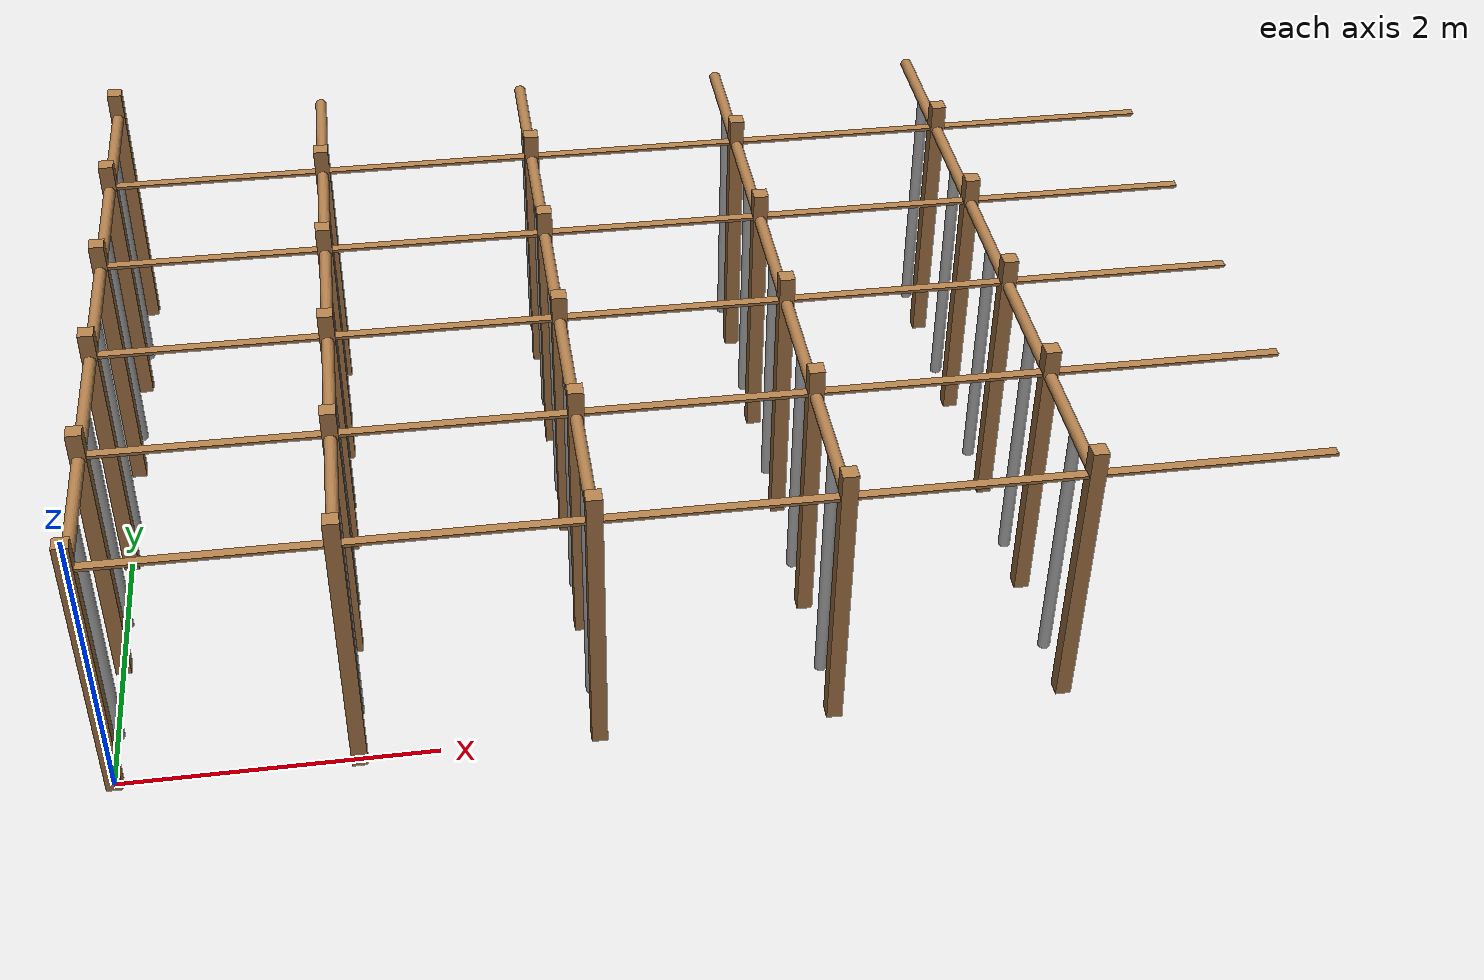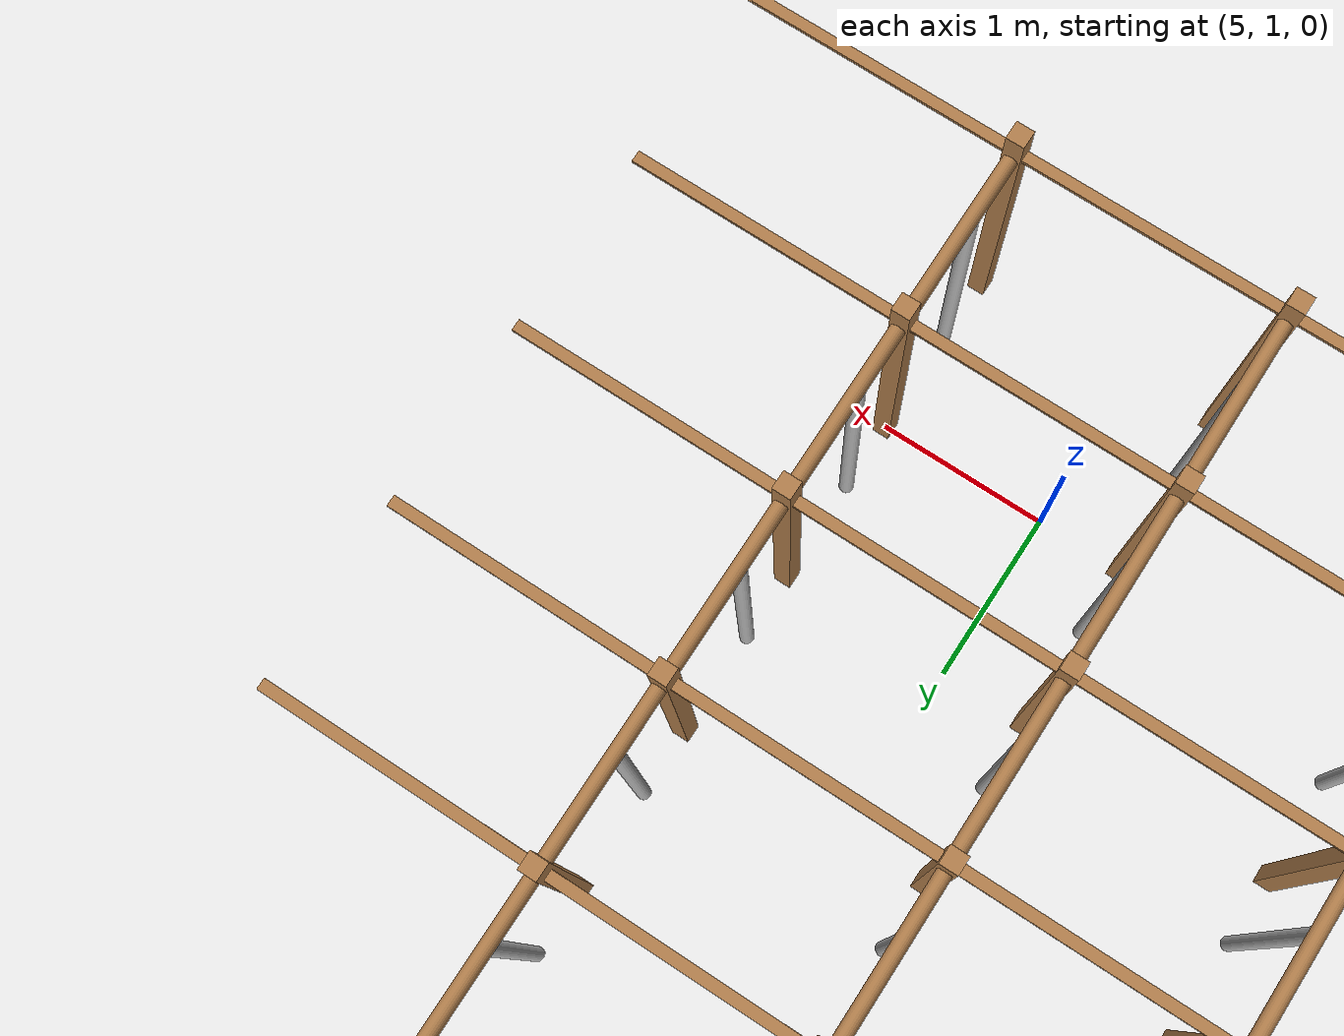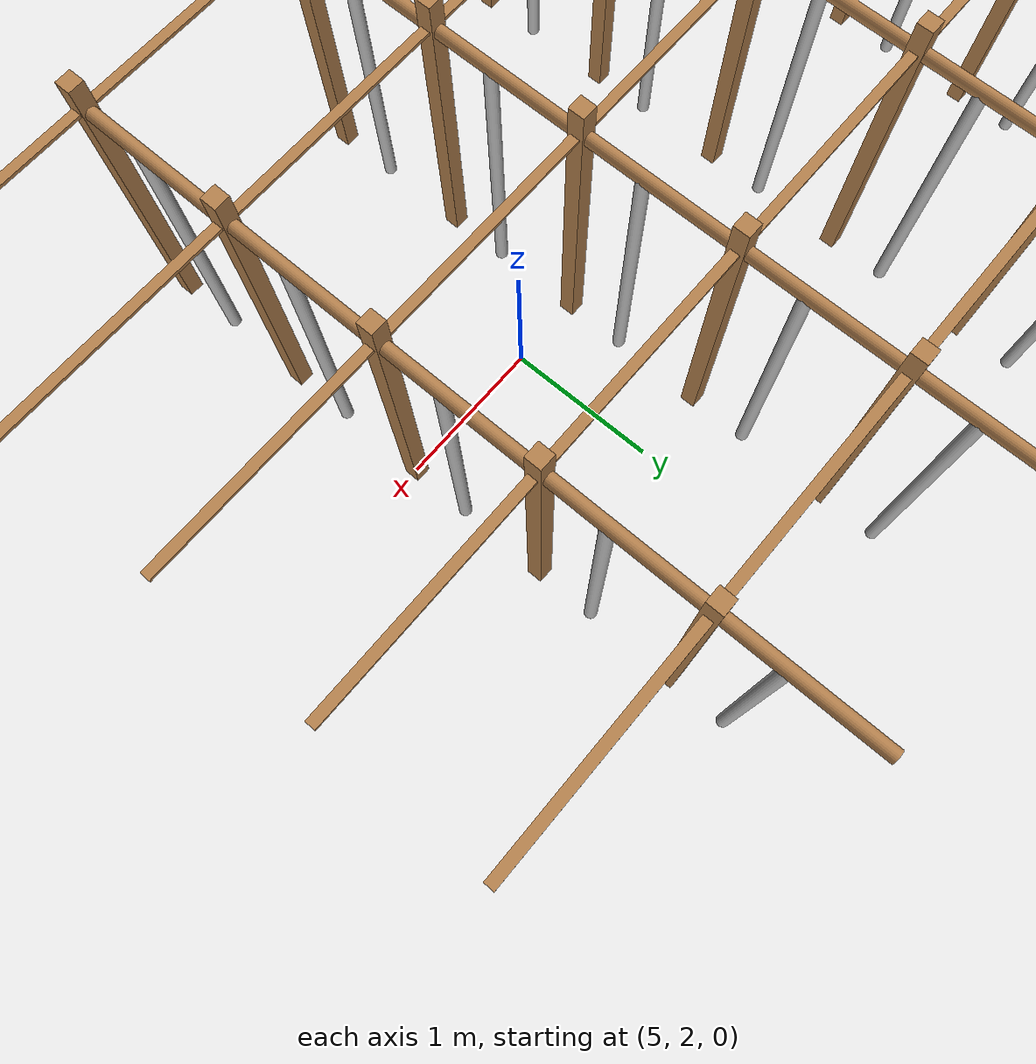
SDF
<sdf version="1.4">
 <model name="pergola">
  <include><name>post_0</name><uri>model://post</uri></include>
  <include><name>post_1</name><pose>0.0 1.0 0 0 0 0</pose><uri>model://post</uri></include>
  <include><name>post_2</name><pose>0.0 2.0 0 0 0 0</pose><uri>model://post</uri></include>
  <include><name>post_3</name><pose>0.0 3.0 0 0 0 0</pose><uri>model://post</uri></include>
  <include><name>post_4</name><pose>0.0 4.0 0 0 0 0</pose><uri>model://post</uri></include>
  <include><name>post_5</name><pose>0.0 5.0 0 0 0 0</pose><uri>model://post</uri></include>
  <include><name>post_11</name><pose>1.5 0.0 0 0 0 0</pose><uri>model://post</uri></include>
  <include><name>post_12</name><pose>1.5 1.0 0 0 0 0</pose><uri>model://post</uri></include>
  <include><name>post_13</name><pose>1.5 2.0 0 0 0 0</pose><uri>model://post</uri></include>
  <include><name>post_14</name><pose>1.5 3.0 0 0 0 0</pose><uri>model://post</uri></include>
  <include><name>post_15</name><pose>1.5 4.0 0 0 0 0</pose><uri>model://post</uri></include>
  <include><name>post_22</name><pose>3.0 0.0 0 0 0 0</pose><uri>model://post</uri></include>
  <include><name>post_23</name><pose>3.0 1.0 0 0 0 0</pose><uri>model://post</uri></include>
  <include><name>post_24</name><pose>3.0 2.0 0 0 0 0</pose><uri>model://post</uri></include>
  <include><name>post_25</name><pose>3.0 3.0 0 0 0 0</pose><uri>model://post</uri></include>
  <include><name>post_26</name><pose>3.0 4.0 0 0 0 0</pose><uri>model://post</uri></include>
  <include><name>post_33</name><pose>4.5 0.0 0 0 0 0</pose><uri>model://post</uri></include>
  <include><name>post_34</name><pose>4.5 1.0 0 0 0 0</pose><uri>model://post</uri></include>
  <include><name>post_35</name><pose>4.5 2.0 0 0 0 0</pose><uri>model://post</uri></include>
  <include><name>post_36</name><pose>4.5 3.0 0 0 0 0</pose><uri>model://post</uri></include>
  <include><name>post_37</name><pose>4.5 4.0 0 0 0 0</pose><uri>model://post</uri></include>
  <include><name>post_44</name><pose>6.0 0.0 0 0 0 0</pose><uri>model://post</uri></include>
  <include><name>post_45</name><pose>6.0 1.0 0 0 0 0</pose><uri>model://post</uri></include>
  <include><name>post_46</name><pose>6.0 2.0 0 0 0 0</pose><uri>model://post</uri></include>
  <include><name>post_47</name><pose>6.0 3.0 0 0 0 0</pose><uri>model://post</uri></include>
  <include><name>post_48</name><pose>6.0 4.0 0 0 0 0</pose><uri>model://post</uri></include>
  <link name="beam_0">
   <pose>0.75 0.0 1.81 0 0 0</pose>
   <collision name="collision"><geometry><box><size>1.5 0.06 0.02</size></box></geometry></collision>
   <visual name="visual">
    <geometry><box><size>1.5 0.06 0.02</size></box></geometry>
    <material><script><name>Gazebo/Wood</name></script></material>
   </visual>
   <inertial>
    <mass>5</mass>
    <inertia>
     <ixx>0.0016666666666666668</ixx>
     <ixy>0.0</ixy>
     <ixz>0.0</ixz>
     <iyy>0.9390000000000001</iyy>
     <iyz>0.0</iyz>
     <izz>0.9376666666666665</izz>
    </inertia>
   </inertial>
  </link>
  <link name="beam_1">
   <pose>0.75 1.0 1.81 0 0 0</pose>
   <collision name="collision"><geometry><box><size>1.5 0.06 0.02</size></box></geometry></collision>
   <visual name="visual">
    <geometry><box><size>1.5 0.06 0.02</size></box></geometry>
    <material><script><name>Gazebo/Wood</name></script></material>
   </visual>
   <inertial>
    <mass>5</mass>
    <inertia>
     <ixx>0.0016666666666666668</ixx>
     <ixy>0.0</ixy>
     <ixz>0.0</ixz>
     <iyy>0.9390000000000001</iyy>
     <iyz>0.0</iyz>
     <izz>0.9376666666666665</izz>
    </inertia>
   </inertial>
  </link>
  <link name="beam_2">
   <pose>0.75 2.0 1.81 0 0 0</pose>
   <collision name="collision"><geometry><box><size>1.5 0.06 0.02</size></box></geometry></collision>
   <visual name="visual">
    <geometry><box><size>1.5 0.06 0.02</size></box></geometry>
    <material><script><name>Gazebo/Wood</name></script></material>
   </visual>
   <inertial>
    <mass>5</mass>
    <inertia>
     <ixx>0.0016666666666666668</ixx>
     <ixy>0.0</ixy>
     <ixz>0.0</ixz>
     <iyy>0.9390000000000001</iyy>
     <iyz>0.0</iyz>
     <izz>0.9376666666666665</izz>
    </inertia>
   </inertial>
  </link>
  <link name="beam_3">
   <pose>0.75 3.0 1.81 0 0 0</pose>
   <collision name="collision"><geometry><box><size>1.5 0.06 0.02</size></box></geometry></collision>
   <visual name="visual">
    <geometry><box><size>1.5 0.06 0.02</size></box></geometry>
    <material><script><name>Gazebo/Wood</name></script></material>
   </visual>
   <inertial>
    <mass>5</mass>
    <inertia>
     <ixx>0.0016666666666666668</ixx>
     <ixy>0.0</ixy>
     <ixz>0.0</ixz>
     <iyy>0.9390000000000001</iyy>
     <iyz>0.0</iyz>
     <izz>0.9376666666666665</izz>
    </inertia>
   </inertial>
  </link>
  <link name="beam_4">
   <pose>0.75 4.0 1.81 0 0 0</pose>
   <collision name="collision"><geometry><box><size>1.5 0.06 0.02</size></box></geometry></collision>
   <visual name="visual">
    <geometry><box><size>1.5 0.06 0.02</size></box></geometry>
    <material><script><name>Gazebo/Wood</name></script></material>
   </visual>
   <inertial>
    <mass>5</mass>
    <inertia>
     <ixx>0.0016666666666666668</ixx>
     <ixy>0.0</ixy>
     <ixz>0.0</ixz>
     <iyy>0.9390000000000001</iyy>
     <iyz>0.0</iyz>
     <izz>0.9376666666666665</izz>
    </inertia>
   </inertial>
  </link>
  <link name="beam_11">
   <pose>2.25 0.0 1.81 0 0 0</pose>
   <collision name="collision"><geometry><box><size>1.5 0.06 0.02</size></box></geometry></collision>
   <visual name="visual">
    <geometry><box><size>1.5 0.06 0.02</size></box></geometry>
    <material><script><name>Gazebo/Wood</name></script></material>
   </visual>
   <inertial>
    <mass>5</mass>
    <inertia>
     <ixx>0.0016666666666666668</ixx>
     <ixy>0.0</ixy>
     <ixz>0.0</ixz>
     <iyy>0.9390000000000001</iyy>
     <iyz>0.0</iyz>
     <izz>0.9376666666666665</izz>
    </inertia>
   </inertial>
  </link>
  <link name="beam_12">
   <pose>2.25 1.0 1.81 0 0 0</pose>
   <collision name="collision"><geometry><box><size>1.5 0.06 0.02</size></box></geometry></collision>
   <visual name="visual">
    <geometry><box><size>1.5 0.06 0.02</size></box></geometry>
    <material><script><name>Gazebo/Wood</name></script></material>
   </visual>
   <inertial>
    <mass>5</mass>
    <inertia>
     <ixx>0.0016666666666666668</ixx>
     <ixy>0.0</ixy>
     <ixz>0.0</ixz>
     <iyy>0.9390000000000001</iyy>
     <iyz>0.0</iyz>
     <izz>0.9376666666666665</izz>
    </inertia>
   </inertial>
  </link>
  <link name="beam_13">
   <pose>2.25 2.0 1.81 0 0 0</pose>
   <collision name="collision"><geometry><box><size>1.5 0.06 0.02</size></box></geometry></collision>
   <visual name="visual">
    <geometry><box><size>1.5 0.06 0.02</size></box></geometry>
    <material><script><name>Gazebo/Wood</name></script></material>
   </visual>
   <inertial>
    <mass>5</mass>
    <inertia>
     <ixx>0.0016666666666666668</ixx>
     <ixy>0.0</ixy>
     <ixz>0.0</ixz>
     <iyy>0.9390000000000001</iyy>
     <iyz>0.0</iyz>
     <izz>0.9376666666666665</izz>
    </inertia>
   </inertial>
  </link>
  <link name="beam_14">
   <pose>2.25 3.0 1.81 0 0 0</pose>
   <collision name="collision"><geometry><box><size>1.5 0.06 0.02</size></box></geometry></collision>
   <visual name="visual">
    <geometry><box><size>1.5 0.06 0.02</size></box></geometry>
    <material><script><name>Gazebo/Wood</name></script></material>
   </visual>
   <inertial>
    <mass>5</mass>
    <inertia>
     <ixx>0.0016666666666666668</ixx>
     <ixy>0.0</ixy>
     <ixz>0.0</ixz>
     <iyy>0.9390000000000001</iyy>
     <iyz>0.0</iyz>
     <izz>0.9376666666666665</izz>
    </inertia>
   </inertial>
  </link>
  <link name="beam_15">
   <pose>2.25 4.0 1.81 0 0 0</pose>
   <collision name="collision"><geometry><box><size>1.5 0.06 0.02</size></box></geometry></collision>
   <visual name="visual">
    <geometry><box><size>1.5 0.06 0.02</size></box></geometry>
    <material><script><name>Gazebo/Wood</name></script></material>
   </visual>
   <inertial>
    <mass>5</mass>
    <inertia>
     <ixx>0.0016666666666666668</ixx>
     <ixy>0.0</ixy>
     <ixz>0.0</ixz>
     <iyy>0.9390000000000001</iyy>
     <iyz>0.0</iyz>
     <izz>0.9376666666666665</izz>
    </inertia>
   </inertial>
  </link>
  <link name="beam_22">
   <pose>3.75 0.0 1.81 0 0 0</pose>
   <collision name="collision"><geometry><box><size>1.5 0.06 0.02</size></box></geometry></collision>
   <visual name="visual">
    <geometry><box><size>1.5 0.06 0.02</size></box></geometry>
    <material><script><name>Gazebo/Wood</name></script></material>
   </visual>
   <inertial>
    <mass>5</mass>
    <inertia>
     <ixx>0.0016666666666666668</ixx>
     <ixy>0.0</ixy>
     <ixz>0.0</ixz>
     <iyy>0.9390000000000001</iyy>
     <iyz>0.0</iyz>
     <izz>0.9376666666666665</izz>
    </inertia>
   </inertial>
  </link>
  <link name="beam_23">
   <pose>3.75 1.0 1.81 0 0 0</pose>
   <collision name="collision"><geometry><box><size>1.5 0.06 0.02</size></box></geometry></collision>
   <visual name="visual">
    <geometry><box><size>1.5 0.06 0.02</size></box></geometry>
    <material><script><name>Gazebo/Wood</name></script></material>
   </visual>
   <inertial>
    <mass>5</mass>
    <inertia>
     <ixx>0.0016666666666666668</ixx>
     <ixy>0.0</ixy>
     <ixz>0.0</ixz>
     <iyy>0.9390000000000001</iyy>
     <iyz>0.0</iyz>
     <izz>0.9376666666666665</izz>
    </inertia>
   </inertial>
  </link>
  <link name="beam_24">
   <pose>3.75 2.0 1.81 0 0 0</pose>
   <collision name="collision"><geometry><box><size>1.5 0.06 0.02</size></box></geometry></collision>
   <visual name="visual">
    <geometry><box><size>1.5 0.06 0.02</size></box></geometry>
    <material><script><name>Gazebo/Wood</name></script></material>
   </visual>
   <inertial>
    <mass>5</mass>
    <inertia>
     <ixx>0.0016666666666666668</ixx>
     <ixy>0.0</ixy>
     <ixz>0.0</ixz>
     <iyy>0.9390000000000001</iyy>
     <iyz>0.0</iyz>
     <izz>0.9376666666666665</izz>
    </inertia>
   </inertial>
  </link>
  <link name="beam_25">
   <pose>3.75 3.0 1.81 0 0 0</pose>
   <collision name="collision"><geometry><box><size>1.5 0.06 0.02</size></box></geometry></collision>
   <visual name="visual">
    <geometry><box><size>1.5 0.06 0.02</size></box></geometry>
    <material><script><name>Gazebo/Wood</name></script></material>
   </visual>
   <inertial>
    <mass>5</mass>
    <inertia>
     <ixx>0.0016666666666666668</ixx>
     <ixy>0.0</ixy>
     <ixz>0.0</ixz>
     <iyy>0.9390000000000001</iyy>
     <iyz>0.0</iyz>
     <izz>0.9376666666666665</izz>
    </inertia>
   </inertial>
  </link>
  <link name="beam_26">
   <pose>3.75 4.0 1.81 0 0 0</pose>
   <collision name="collision"><geometry><box><size>1.5 0.06 0.02</size></box></geometry></collision>
   <visual name="visual">
    <geometry><box><size>1.5 0.06 0.02</size></box></geometry>
    <material><script><name>Gazebo/Wood</name></script></material>
   </visual>
   <inertial>
    <mass>5</mass>
    <inertia>
     <ixx>0.0016666666666666668</ixx>
     <ixy>0.0</ixy>
     <ixz>0.0</ixz>
     <iyy>0.9390000000000001</iyy>
     <iyz>0.0</iyz>
     <izz>0.9376666666666665</izz>
    </inertia>
   </inertial>
  </link>
  <link name="beam_33">
   <pose>5.25 0.0 1.81 0 0 0</pose>
   <collision name="collision"><geometry><box><size>1.5 0.06 0.02</size></box></geometry></collision>
   <visual name="visual">
    <geometry><box><size>1.5 0.06 0.02</size></box></geometry>
    <material><script><name>Gazebo/Wood</name></script></material>
   </visual>
   <inertial>
    <mass>5</mass>
    <inertia>
     <ixx>0.0016666666666666668</ixx>
     <ixy>0.0</ixy>
     <ixz>0.0</ixz>
     <iyy>0.9390000000000001</iyy>
     <iyz>0.0</iyz>
     <izz>0.9376666666666665</izz>
    </inertia>
   </inertial>
  </link>
  <link name="beam_34">
   <pose>5.25 1.0 1.81 0 0 0</pose>
   <collision name="collision"><geometry><box><size>1.5 0.06 0.02</size></box></geometry></collision>
   <visual name="visual">
    <geometry><box><size>1.5 0.06 0.02</size></box></geometry>
    <material><script><name>Gazebo/Wood</name></script></material>
   </visual>
   <inertial>
    <mass>5</mass>
    <inertia>
     <ixx>0.0016666666666666668</ixx>
     <ixy>0.0</ixy>
     <ixz>0.0</ixz>
     <iyy>0.9390000000000001</iyy>
     <iyz>0.0</iyz>
     <izz>0.9376666666666665</izz>
    </inertia>
   </inertial>
  </link>
  <link name="beam_35">
   <pose>5.25 2.0 1.81 0 0 0</pose>
   <collision name="collision"><geometry><box><size>1.5 0.06 0.02</size></box></geometry></collision>
   <visual name="visual">
    <geometry><box><size>1.5 0.06 0.02</size></box></geometry>
    <material><script><name>Gazebo/Wood</name></script></material>
   </visual>
   <inertial>
    <mass>5</mass>
    <inertia>
     <ixx>0.0016666666666666668</ixx>
     <ixy>0.0</ixy>
     <ixz>0.0</ixz>
     <iyy>0.9390000000000001</iyy>
     <iyz>0.0</iyz>
     <izz>0.9376666666666665</izz>
    </inertia>
   </inertial>
  </link>
  <link name="beam_36">
   <pose>5.25 3.0 1.81 0 0 0</pose>
   <collision name="collision"><geometry><box><size>1.5 0.06 0.02</size></box></geometry></collision>
   <visual name="visual">
    <geometry><box><size>1.5 0.06 0.02</size></box></geometry>
    <material><script><name>Gazebo/Wood</name></script></material>
   </visual>
   <inertial>
    <mass>5</mass>
    <inertia>
     <ixx>0.0016666666666666668</ixx>
     <ixy>0.0</ixy>
     <ixz>0.0</ixz>
     <iyy>0.9390000000000001</iyy>
     <iyz>0.0</iyz>
     <izz>0.9376666666666665</izz>
    </inertia>
   </inertial>
  </link>
  <link name="beam_37">
   <pose>5.25 4.0 1.81 0 0 0</pose>
   <collision name="collision"><geometry><box><size>1.5 0.06 0.02</size></box></geometry></collision>
   <visual name="visual">
    <geometry><box><size>1.5 0.06 0.02</size></box></geometry>
    <material><script><name>Gazebo/Wood</name></script></material>
   </visual>
   <inertial>
    <mass>5</mass>
    <inertia>
     <ixx>0.0016666666666666668</ixx>
     <ixy>0.0</ixy>
     <ixz>0.0</ixz>
     <iyy>0.9390000000000001</iyy>
     <iyz>0.0</iyz>
     <izz>0.9376666666666665</izz>
    </inertia>
   </inertial>
  </link>
  <link name="beam_44">
   <pose>6.75 0.0 1.81 0 0 0</pose>
   <collision name="collision"><geometry><box><size>1.5 0.06 0.02</size></box></geometry></collision>
   <visual name="visual">
    <geometry><box><size>1.5 0.06 0.02</size></box></geometry>
    <material><script><name>Gazebo/Wood</name></script></material>
   </visual>
   <inertial>
    <mass>5</mass>
    <inertia>
     <ixx>0.0016666666666666668</ixx>
     <ixy>0.0</ixy>
     <ixz>0.0</ixz>
     <iyy>0.9390000000000001</iyy>
     <iyz>0.0</iyz>
     <izz>0.9376666666666665</izz>
    </inertia>
   </inertial>
  </link>
  <link name="beam_45">
   <pose>6.75 1.0 1.81 0 0 0</pose>
   <collision name="collision"><geometry><box><size>1.5 0.06 0.02</size></box></geometry></collision>
   <visual name="visual">
    <geometry><box><size>1.5 0.06 0.02</size></box></geometry>
    <material><script><name>Gazebo/Wood</name></script></material>
   </visual>
   <inertial>
    <mass>5</mass>
    <inertia>
     <ixx>0.0016666666666666668</ixx>
     <ixy>0.0</ixy>
     <ixz>0.0</ixz>
     <iyy>0.9390000000000001</iyy>
     <iyz>0.0</iyz>
     <izz>0.9376666666666665</izz>
    </inertia>
   </inertial>
  </link>
  <link name="beam_46">
   <pose>6.75 2.0 1.81 0 0 0</pose>
   <collision name="collision"><geometry><box><size>1.5 0.06 0.02</size></box></geometry></collision>
   <visual name="visual">
    <geometry><box><size>1.5 0.06 0.02</size></box></geometry>
    <material><script><name>Gazebo/Wood</name></script></material>
   </visual>
   <inertial>
    <mass>5</mass>
    <inertia>
     <ixx>0.0016666666666666668</ixx>
     <ixy>0.0</ixy>
     <ixz>0.0</ixz>
     <iyy>0.9390000000000001</iyy>
     <iyz>0.0</iyz>
     <izz>0.9376666666666665</izz>
    </inertia>
   </inertial>
  </link>
  <link name="beam_47">
   <pose>6.75 3.0 1.81 0 0 0</pose>
   <collision name="collision"><geometry><box><size>1.5 0.06 0.02</size></box></geometry></collision>
   <visual name="visual">
    <geometry><box><size>1.5 0.06 0.02</size></box></geometry>
    <material><script><name>Gazebo/Wood</name></script></material>
   </visual>
   <inertial>
    <mass>5</mass>
    <inertia>
     <ixx>0.0016666666666666668</ixx>
     <ixy>0.0</ixy>
     <ixz>0.0</ixz>
     <iyy>0.9390000000000001</iyy>
     <iyz>0.0</iyz>
     <izz>0.9376666666666665</izz>
    </inertia>
   </inertial>
  </link>
  <link name="beam_48">
   <pose>6.75 4.0 1.81 0 0 0</pose>
   <collision name="collision"><geometry><box><size>1.5 0.06 0.02</size></box></geometry></collision>
   <visual name="visual">
    <geometry><box><size>1.5 0.06 0.02</size></box></geometry>
    <material><script><name>Gazebo/Wood</name></script></material>
   </visual>
   <inertial>
    <mass>5</mass>
    <inertia>
     <ixx>0.0016666666666666668</ixx>
     <ixy>0.0</ixy>
     <ixz>0.0</ixz>
     <iyy>0.9390000000000001</iyy>
     <iyz>0.0</iyz>
     <izz>0.9376666666666665</izz>
    </inertia>
   </inertial>
  </link>
  <include><name>tree_0</name><pose>0.0 0.4 0 0 0 0</pose><uri>model://tree_trunk</uri></include>
  <include><name>tree_1</name><pose>0.0 1.4 0 0 0 0</pose><uri>model://tree_trunk</uri></include>
  <include><name>tree_2</name><pose>0.0 2.4 0 0 0 0</pose><uri>model://tree_trunk</uri></include>
  <include><name>tree_3</name><pose>0.0 3.4 0 0 0 0</pose><uri>model://tree_trunk</uri></include>
  <include><name>tree_4</name><pose>0.0 4.4 0 0 0 0</pose><uri>model://tree_trunk</uri></include>
  <include><name>tree_10</name><pose>1.5 0.4 0 0 0 0</pose><uri>model://tree_trunk</uri></include>
  <include><name>tree_11</name><pose>1.5 1.4 0 0 0 0</pose><uri>model://tree_trunk</uri></include>
  <include><name>tree_12</name><pose>1.5 2.4 0 0 0 0</pose><uri>model://tree_trunk</uri></include>
  <include><name>tree_13</name><pose>1.5 3.4 0 0 0 0</pose><uri>model://tree_trunk</uri></include>
  <include><name>tree_14</name><pose>1.5 4.4 0 0 0 0</pose><uri>model://tree_trunk</uri></include>
  <include><name>tree_20</name><pose>3.0 0.4 0 0 0 0</pose><uri>model://tree_trunk</uri></include>
  <include><name>tree_21</name><pose>3.0 1.4 0 0 0 0</pose><uri>model://tree_trunk</uri></include>
  <include><name>tree_22</name><pose>3.0 2.4 0 0 0 0</pose><uri>model://tree_trunk</uri></include>
  <include><name>tree_23</name><pose>3.0 3.4 0 0 0 0</pose><uri>model://tree_trunk</uri></include>
  <include><name>tree_24</name><pose>3.0 4.4 0 0 0 0</pose><uri>model://tree_trunk</uri></include>
  <include><name>tree_30</name><pose>4.5 0.4 0 0 0 0</pose><uri>model://tree_trunk</uri></include>
  <include><name>tree_31</name><pose>4.5 1.4 0 0 0 0</pose><uri>model://tree_trunk</uri></include>
  <include><name>tree_32</name><pose>4.5 2.4 0 0 0 0</pose><uri>model://tree_trunk</uri></include>
  <include><name>tree_33</name><pose>4.5 3.4 0 0 0 0</pose><uri>model://tree_trunk</uri></include>
  <include><name>tree_34</name><pose>4.5 4.4 0 0 0 0</pose><uri>model://tree_trunk</uri></include>
  <include><name>tree_40</name><pose>6.0 0.4 0 0 0 0</pose><uri>model://tree_trunk</uri></include>
  <include><name>tree_41</name><pose>6.0 1.4 0 0 0 0</pose><uri>model://tree_trunk</uri></include>
  <include><name>tree_42</name><pose>6.0 2.4 0 0 0 0</pose><uri>model://tree_trunk</uri></include>
  <include><name>tree_43</name><pose>6.0 3.4 0 0 0 0</pose><uri>model://tree_trunk</uri></include>
  <include><name>tree_44</name><pose>6.0 4.4 0 0 0 0</pose><uri>model://tree_trunk</uri></include>
  <link name="baseBranch_0">
   <pose>0.0 0.5 1.8 1.5707963267948966 0 0</pose>
   <collision name="collision">
    <geometry><cylinder><radius>0.04</radius><length>0.94</length></cylinder></geometry>
   </collision>
   <visual name="visual">
    <geometry><cylinder><radius>0.04</radius><length>0.94</length></cylinder></geometry>
    <material><script><name>Gazebo/WoodFloor</name></script></material>
   </visual>
   <inertial>
    <mass>10</mass>
    <inertia>
     <ixx>0.7403333333333334</ixx>
     <ixy>0.0</ixy>
     <ixz>0.0</ixz>
     <iyy>0.7403333333333334</iyy>
     <iyz>0.0</iyz>
     <izz>0.008</izz>
    </inertia>
   </inertial>
  </link>
  <link name="baseBranch_1">
   <pose>0.0 1.5 1.8 1.5707963267948966 0 0</pose>
   <collision name="collision">
    <geometry><cylinder><radius>0.04</radius><length>0.94</length></cylinder></geometry>
   </collision>
   <visual name="visual">
    <geometry><cylinder><radius>0.04</radius><length>0.94</length></cylinder></geometry>
    <material><script><name>Gazebo/WoodFloor</name></script></material>
   </visual>
   <inertial>
    <mass>10</mass>
    <inertia>
     <ixx>0.7403333333333334</ixx>
     <ixy>0.0</ixy>
     <ixz>0.0</ixz>
     <iyy>0.7403333333333334</iyy>
     <iyz>0.0</iyz>
     <izz>0.008</izz>
    </inertia>
   </inertial>
  </link>
  <link name="baseBranch_2">
   <pose>0.0 2.5 1.8 1.5707963267948966 0 0</pose>
   <collision name="collision">
    <geometry><cylinder><radius>0.04</radius><length>0.94</length></cylinder></geometry>
   </collision>
   <visual name="visual">
    <geometry><cylinder><radius>0.04</radius><length>0.94</length></cylinder></geometry>
    <material><script><name>Gazebo/WoodFloor</name></script></material>
   </visual>
   <inertial>
    <mass>10</mass>
    <inertia>
     <ixx>0.7403333333333334</ixx>
     <ixy>0.0</ixy>
     <ixz>0.0</ixz>
     <iyy>0.7403333333333334</iyy>
     <iyz>0.0</iyz>
     <izz>0.008</izz>
    </inertia>
   </inertial>
  </link>
  <link name="baseBranch_3">
   <pose>0.0 3.5 1.8 1.5707963267948966 0 0</pose>
   <collision name="collision">
    <geometry><cylinder><radius>0.04</radius><length>0.94</length></cylinder></geometry>
   </collision>
   <visual name="visual">
    <geometry><cylinder><radius>0.04</radius><length>0.94</length></cylinder></geometry>
    <material><script><name>Gazebo/WoodFloor</name></script></material>
   </visual>
   <inertial>
    <mass>10</mass>
    <inertia>
     <ixx>0.7403333333333334</ixx>
     <ixy>0.0</ixy>
     <ixz>0.0</ixz>
     <iyy>0.7403333333333334</iyy>
     <iyz>0.0</iyz>
     <izz>0.008</izz>
    </inertia>
   </inertial>
  </link>
  <link name="baseBranch_4">
   <pose>0.0 4.5 1.8 1.5707963267948966 0 0</pose>
   <collision name="collision">
    <geometry><cylinder><radius>0.04</radius><length>0.94</length></cylinder></geometry>
   </collision>
   <visual name="visual">
    <geometry><cylinder><radius>0.04</radius><length>0.94</length></cylinder></geometry>
    <material><script><name>Gazebo/WoodFloor</name></script></material>
   </visual>
   <inertial>
    <mass>10</mass>
    <inertia>
     <ixx>0.7403333333333334</ixx>
     <ixy>0.0</ixy>
     <ixz>0.0</ixz>
     <iyy>0.7403333333333334</iyy>
     <iyz>0.0</iyz>
     <izz>0.008</izz>
    </inertia>
   </inertial>
  </link>
  <link name="baseBranch_10">
   <pose>1.5 0.5 1.8 1.5707963267948966 0 0</pose>
   <collision name="collision">
    <geometry><cylinder><radius>0.04</radius><length>0.94</length></cylinder></geometry>
   </collision>
   <visual name="visual">
    <geometry><cylinder><radius>0.04</radius><length>0.94</length></cylinder></geometry>
    <material><script><name>Gazebo/WoodFloor</name></script></material>
   </visual>
   <inertial>
    <mass>10</mass>
    <inertia>
     <ixx>0.7403333333333334</ixx>
     <ixy>0.0</ixy>
     <ixz>0.0</ixz>
     <iyy>0.7403333333333334</iyy>
     <iyz>0.0</iyz>
     <izz>0.008</izz>
    </inertia>
   </inertial>
  </link>
  <link name="baseBranch_11">
   <pose>1.5 1.5 1.8 1.5707963267948966 0 0</pose>
   <collision name="collision">
    <geometry><cylinder><radius>0.04</radius><length>0.94</length></cylinder></geometry>
   </collision>
   <visual name="visual">
    <geometry><cylinder><radius>0.04</radius><length>0.94</length></cylinder></geometry>
    <material><script><name>Gazebo/WoodFloor</name></script></material>
   </visual>
   <inertial>
    <mass>10</mass>
    <inertia>
     <ixx>0.7403333333333334</ixx>
     <ixy>0.0</ixy>
     <ixz>0.0</ixz>
     <iyy>0.7403333333333334</iyy>
     <iyz>0.0</iyz>
     <izz>0.008</izz>
    </inertia>
   </inertial>
  </link>
  <link name="baseBranch_12">
   <pose>1.5 2.5 1.8 1.5707963267948966 0 0</pose>
   <collision name="collision">
    <geometry><cylinder><radius>0.04</radius><length>0.94</length></cylinder></geometry>
   </collision>
   <visual name="visual">
    <geometry><cylinder><radius>0.04</radius><length>0.94</length></cylinder></geometry>
    <material><script><name>Gazebo/WoodFloor</name></script></material>
   </visual>
   <inertial>
    <mass>10</mass>
    <inertia>
     <ixx>0.7403333333333334</ixx>
     <ixy>0.0</ixy>
     <ixz>0.0</ixz>
     <iyy>0.7403333333333334</iyy>
     <iyz>0.0</iyz>
     <izz>0.008</izz>
    </inertia>
   </inertial>
  </link>
  <link name="baseBranch_13">
   <pose>1.5 3.5 1.8 1.5707963267948966 0 0</pose>
   <collision name="collision">
    <geometry><cylinder><radius>0.04</radius><length>0.94</length></cylinder></geometry>
   </collision>
   <visual name="visual">
    <geometry><cylinder><radius>0.04</radius><length>0.94</length></cylinder></geometry>
    <material><script><name>Gazebo/WoodFloor</name></script></material>
   </visual>
   <inertial>
    <mass>10</mass>
    <inertia>
     <ixx>0.7403333333333334</ixx>
     <ixy>0.0</ixy>
     <ixz>0.0</ixz>
     <iyy>0.7403333333333334</iyy>
     <iyz>0.0</iyz>
     <izz>0.008</izz>
    </inertia>
   </inertial>
  </link>
  <link name="baseBranch_14">
   <pose>1.5 4.5 1.8 1.5707963267948966 0 0</pose>
   <collision name="collision">
    <geometry><cylinder><radius>0.04</radius><length>0.94</length></cylinder></geometry>
   </collision>
   <visual name="visual">
    <geometry><cylinder><radius>0.04</radius><length>0.94</length></cylinder></geometry>
    <material><script><name>Gazebo/WoodFloor</name></script></material>
   </visual>
   <inertial>
    <mass>10</mass>
    <inertia>
     <ixx>0.7403333333333334</ixx>
     <ixy>0.0</ixy>
     <ixz>0.0</ixz>
     <iyy>0.7403333333333334</iyy>
     <iyz>0.0</iyz>
     <izz>0.008</izz>
    </inertia>
   </inertial>
  </link>
  <link name="baseBranch_20">
   <pose>3.0 0.5 1.8 1.5707963267948966 0 0</pose>
   <collision name="collision">
    <geometry><cylinder><radius>0.04</radius><length>0.94</length></cylinder></geometry>
   </collision>
   <visual name="visual">
    <geometry><cylinder><radius>0.04</radius><length>0.94</length></cylinder></geometry>
    <material><script><name>Gazebo/WoodFloor</name></script></material>
   </visual>
   <inertial>
    <mass>10</mass>
    <inertia>
     <ixx>0.7403333333333334</ixx>
     <ixy>0.0</ixy>
     <ixz>0.0</ixz>
     <iyy>0.7403333333333334</iyy>
     <iyz>0.0</iyz>
     <izz>0.008</izz>
    </inertia>
   </inertial>
  </link>
  <link name="baseBranch_21">
   <pose>3.0 1.5 1.8 1.5707963267948966 0 0</pose>
   <collision name="collision">
    <geometry><cylinder><radius>0.04</radius><length>0.94</length></cylinder></geometry>
   </collision>
   <visual name="visual">
    <geometry><cylinder><radius>0.04</radius><length>0.94</length></cylinder></geometry>
    <material><script><name>Gazebo/WoodFloor</name></script></material>
   </visual>
   <inertial>
    <mass>10</mass>
    <inertia>
     <ixx>0.7403333333333334</ixx>
     <ixy>0.0</ixy>
     <ixz>0.0</ixz>
     <iyy>0.7403333333333334</iyy>
     <iyz>0.0</iyz>
     <izz>0.008</izz>
    </inertia>
   </inertial>
  </link>
  <link name="baseBranch_22">
   <pose>3.0 2.5 1.8 1.5707963267948966 0 0</pose>
   <collision name="collision">
    <geometry><cylinder><radius>0.04</radius><length>0.94</length></cylinder></geometry>
   </collision>
   <visual name="visual">
    <geometry><cylinder><radius>0.04</radius><length>0.94</length></cylinder></geometry>
    <material><script><name>Gazebo/WoodFloor</name></script></material>
   </visual>
   <inertial>
    <mass>10</mass>
    <inertia>
     <ixx>0.7403333333333334</ixx>
     <ixy>0.0</ixy>
     <ixz>0.0</ixz>
     <iyy>0.7403333333333334</iyy>
     <iyz>0.0</iyz>
     <izz>0.008</izz>
    </inertia>
   </inertial>
  </link>
  <link name="baseBranch_23">
   <pose>3.0 3.5 1.8 1.5707963267948966 0 0</pose>
   <collision name="collision">
    <geometry><cylinder><radius>0.04</radius><length>0.94</length></cylinder></geometry>
   </collision>
   <visual name="visual">
    <geometry><cylinder><radius>0.04</radius><length>0.94</length></cylinder></geometry>
    <material><script><name>Gazebo/WoodFloor</name></script></material>
   </visual>
   <inertial>
    <mass>10</mass>
    <inertia>
     <ixx>0.7403333333333334</ixx>
     <ixy>0.0</ixy>
     <ixz>0.0</ixz>
     <iyy>0.7403333333333334</iyy>
     <iyz>0.0</iyz>
     <izz>0.008</izz>
    </inertia>
   </inertial>
  </link>
  <link name="baseBranch_24">
   <pose>3.0 4.5 1.8 1.5707963267948966 0 0</pose>
   <collision name="collision">
    <geometry><cylinder><radius>0.04</radius><length>0.94</length></cylinder></geometry>
   </collision>
   <visual name="visual">
    <geometry><cylinder><radius>0.04</radius><length>0.94</length></cylinder></geometry>
    <material><script><name>Gazebo/WoodFloor</name></script></material>
   </visual>
   <inertial>
    <mass>10</mass>
    <inertia>
     <ixx>0.7403333333333334</ixx>
     <ixy>0.0</ixy>
     <ixz>0.0</ixz>
     <iyy>0.7403333333333334</iyy>
     <iyz>0.0</iyz>
     <izz>0.008</izz>
    </inertia>
   </inertial>
  </link>
  <link name="baseBranch_30">
   <pose>4.5 0.5 1.8 1.5707963267948966 0 0</pose>
   <collision name="collision">
    <geometry><cylinder><radius>0.04</radius><length>0.94</length></cylinder></geometry>
   </collision>
   <visual name="visual">
    <geometry><cylinder><radius>0.04</radius><length>0.94</length></cylinder></geometry>
    <material><script><name>Gazebo/WoodFloor</name></script></material>
   </visual>
   <inertial>
    <mass>10</mass>
    <inertia>
     <ixx>0.7403333333333334</ixx>
     <ixy>0.0</ixy>
     <ixz>0.0</ixz>
     <iyy>0.7403333333333334</iyy>
     <iyz>0.0</iyz>
     <izz>0.008</izz>
    </inertia>
   </inertial>
  </link>
  <link name="baseBranch_31">
   <pose>4.5 1.5 1.8 1.5707963267948966 0 0</pose>
   <collision name="collision">
    <geometry><cylinder><radius>0.04</radius><length>0.94</length></cylinder></geometry>
   </collision>
   <visual name="visual">
    <geometry><cylinder><radius>0.04</radius><length>0.94</length></cylinder></geometry>
    <material><script><name>Gazebo/WoodFloor</name></script></material>
   </visual>
   <inertial>
    <mass>10</mass>
    <inertia>
     <ixx>0.7403333333333334</ixx>
     <ixy>0.0</ixy>
     <ixz>0.0</ixz>
     <iyy>0.7403333333333334</iyy>
     <iyz>0.0</iyz>
     <izz>0.008</izz>
    </inertia>
   </inertial>
  </link>
  <link name="baseBranch_32">
   <pose>4.5 2.5 1.8 1.5707963267948966 0 0</pose>
   <collision name="collision">
    <geometry><cylinder><radius>0.04</radius><length>0.94</length></cylinder></geometry>
   </collision>
   <visual name="visual">
    <geometry><cylinder><radius>0.04</radius><length>0.94</length></cylinder></geometry>
    <material><script><name>Gazebo/WoodFloor</name></script></material>
   </visual>
   <inertial>
    <mass>10</mass>
    <inertia>
     <ixx>0.7403333333333334</ixx>
     <ixy>0.0</ixy>
     <ixz>0.0</ixz>
     <iyy>0.7403333333333334</iyy>
     <iyz>0.0</iyz>
     <izz>0.008</izz>
    </inertia>
   </inertial>
  </link>
  <link name="baseBranch_33">
   <pose>4.5 3.5 1.8 1.5707963267948966 0 0</pose>
   <collision name="collision">
    <geometry><cylinder><radius>0.04</radius><length>0.94</length></cylinder></geometry>
   </collision>
   <visual name="visual">
    <geometry><cylinder><radius>0.04</radius><length>0.94</length></cylinder></geometry>
    <material><script><name>Gazebo/WoodFloor</name></script></material>
   </visual>
   <inertial>
    <mass>10</mass>
    <inertia>
     <ixx>0.7403333333333334</ixx>
     <ixy>0.0</ixy>
     <ixz>0.0</ixz>
     <iyy>0.7403333333333334</iyy>
     <iyz>0.0</iyz>
     <izz>0.008</izz>
    </inertia>
   </inertial>
  </link>
  <link name="baseBranch_34">
   <pose>4.5 4.5 1.8 1.5707963267948966 0 0</pose>
   <collision name="collision">
    <geometry><cylinder><radius>0.04</radius><length>0.94</length></cylinder></geometry>
   </collision>
   <visual name="visual">
    <geometry><cylinder><radius>0.04</radius><length>0.94</length></cylinder></geometry>
    <material><script><name>Gazebo/WoodFloor</name></script></material>
   </visual>
   <inertial>
    <mass>10</mass>
    <inertia>
     <ixx>0.7403333333333334</ixx>
     <ixy>0.0</ixy>
     <ixz>0.0</ixz>
     <iyy>0.7403333333333334</iyy>
     <iyz>0.0</iyz>
     <izz>0.008</izz>
    </inertia>
   </inertial>
  </link>
  <link name="baseBranch_40">
   <pose>6.0 0.5 1.8 1.5707963267948966 0 0</pose>
   <collision name="collision">
    <geometry><cylinder><radius>0.04</radius><length>0.94</length></cylinder></geometry>
   </collision>
   <visual name="visual">
    <geometry><cylinder><radius>0.04</radius><length>0.94</length></cylinder></geometry>
    <material><script><name>Gazebo/WoodFloor</name></script></material>
   </visual>
   <inertial>
    <mass>10</mass>
    <inertia>
     <ixx>0.7403333333333334</ixx>
     <ixy>0.0</ixy>
     <ixz>0.0</ixz>
     <iyy>0.7403333333333334</iyy>
     <iyz>0.0</iyz>
     <izz>0.008</izz>
    </inertia>
   </inertial>
  </link>
  <link name="baseBranch_41">
   <pose>6.0 1.5 1.8 1.5707963267948966 0 0</pose>
   <collision name="collision">
    <geometry><cylinder><radius>0.04</radius><length>0.94</length></cylinder></geometry>
   </collision>
   <visual name="visual">
    <geometry><cylinder><radius>0.04</radius><length>0.94</length></cylinder></geometry>
    <material><script><name>Gazebo/WoodFloor</name></script></material>
   </visual>
   <inertial>
    <mass>10</mass>
    <inertia>
     <ixx>0.7403333333333334</ixx>
     <ixy>0.0</ixy>
     <ixz>0.0</ixz>
     <iyy>0.7403333333333334</iyy>
     <iyz>0.0</iyz>
     <izz>0.008</izz>
    </inertia>
   </inertial>
  </link>
  <link name="baseBranch_42">
   <pose>6.0 2.5 1.8 1.5707963267948966 0 0</pose>
   <collision name="collision">
    <geometry><cylinder><radius>0.04</radius><length>0.94</length></cylinder></geometry>
   </collision>
   <visual name="visual">
    <geometry><cylinder><radius>0.04</radius><length>0.94</length></cylinder></geometry>
    <material><script><name>Gazebo/WoodFloor</name></script></material>
   </visual>
   <inertial>
    <mass>10</mass>
    <inertia>
     <ixx>0.7403333333333334</ixx>
     <ixy>0.0</ixy>
     <ixz>0.0</ixz>
     <iyy>0.7403333333333334</iyy>
     <iyz>0.0</iyz>
     <izz>0.008</izz>
    </inertia>
   </inertial>
  </link>
  <link name="baseBranch_43">
   <pose>6.0 3.5 1.8 1.5707963267948966 0 0</pose>
   <collision name="collision">
    <geometry><cylinder><radius>0.04</radius><length>0.94</length></cylinder></geometry>
   </collision>
   <visual name="visual">
    <geometry><cylinder><radius>0.04</radius><length>0.94</length></cylinder></geometry>
    <material><script><name>Gazebo/WoodFloor</name></script></material>
   </visual>
   <inertial>
    <mass>10</mass>
    <inertia>
     <ixx>0.7403333333333334</ixx>
     <ixy>0.0</ixy>
     <ixz>0.0</ixz>
     <iyy>0.7403333333333334</iyy>
     <iyz>0.0</iyz>
     <izz>0.008</izz>
    </inertia>
   </inertial>
  </link>
  <link name="baseBranch_44">
   <pose>6.0 4.5 1.8 1.5707963267948966 0 0</pose>
   <collision name="collision">
    <geometry><cylinder><radius>0.04</radius><length>0.94</length></cylinder></geometry>
   </collision>
   <visual name="visual">
    <geometry><cylinder><radius>0.04</radius><length>0.94</length></cylinder></geometry>
    <material><script><name>Gazebo/WoodFloor</name></script></material>
   </visual>
   <inertial>
    <mass>10</mass>
    <inertia>
     <ixx>0.7403333333333334</ixx>
     <ixy>0.0</ixy>
     <ixz>0.0</ixz>
     <iyy>0.7403333333333334</iyy>
     <iyz>0.0</iyz>
     <izz>0.008</izz>
    </inertia>
   </inertial>
  </link>
 </model>
</sdf>
